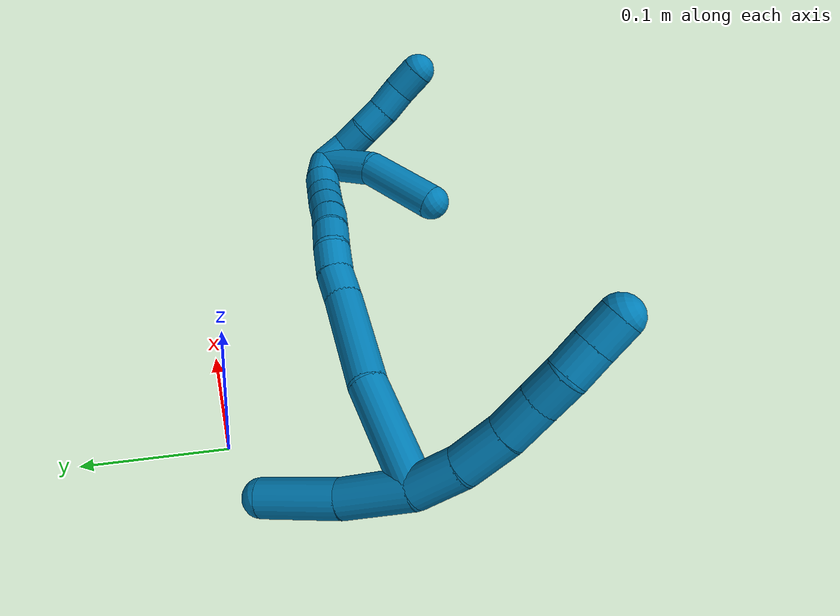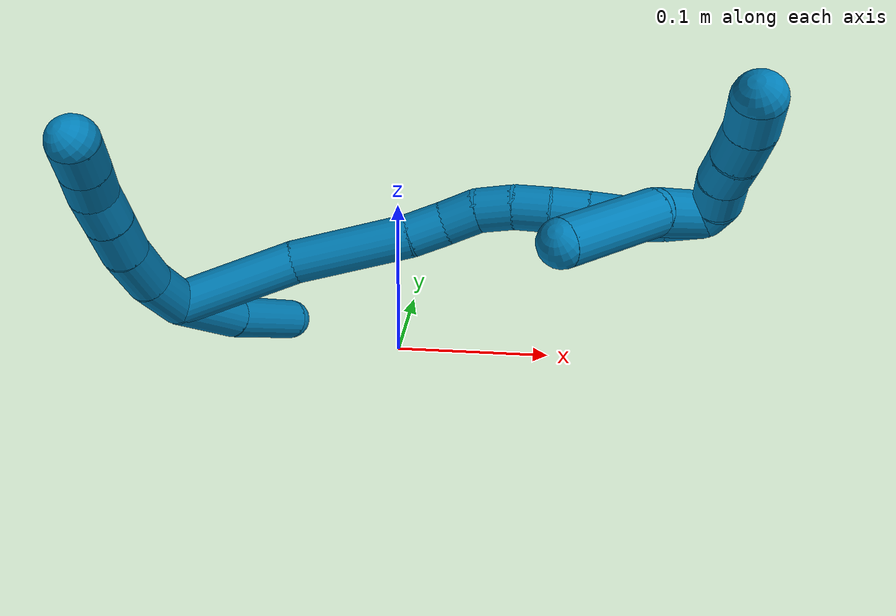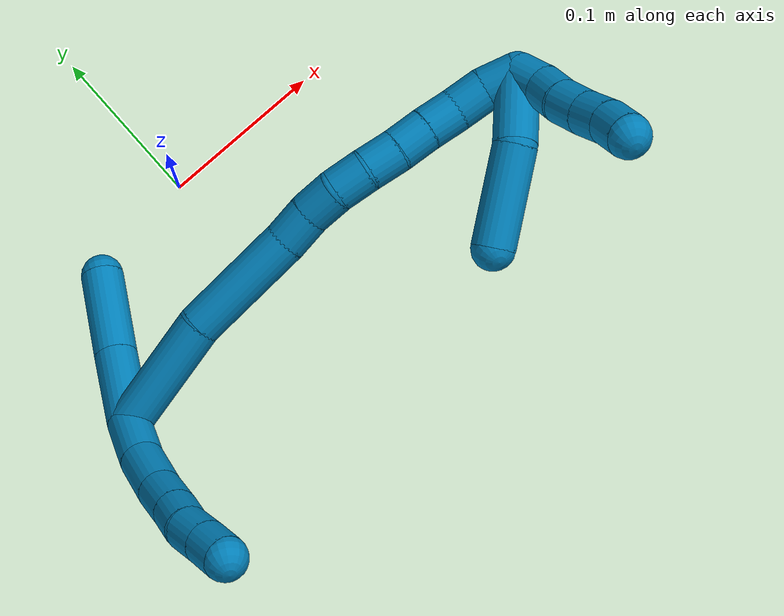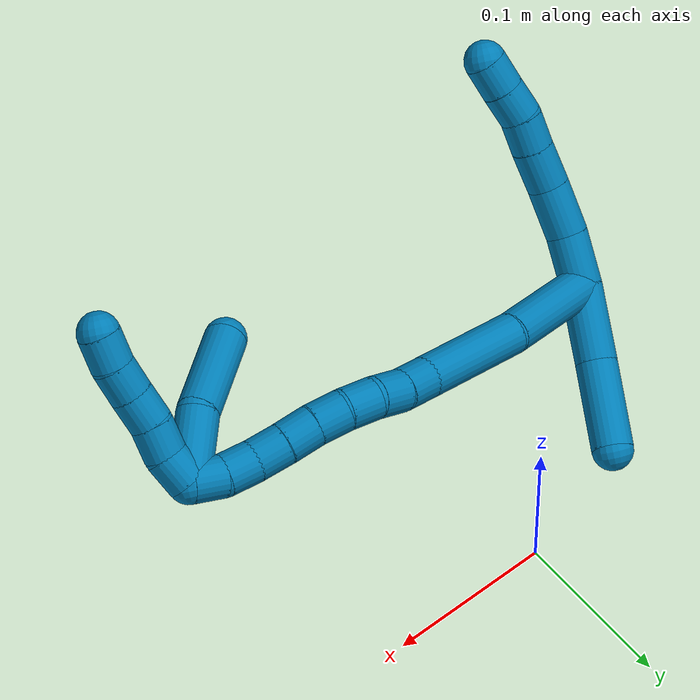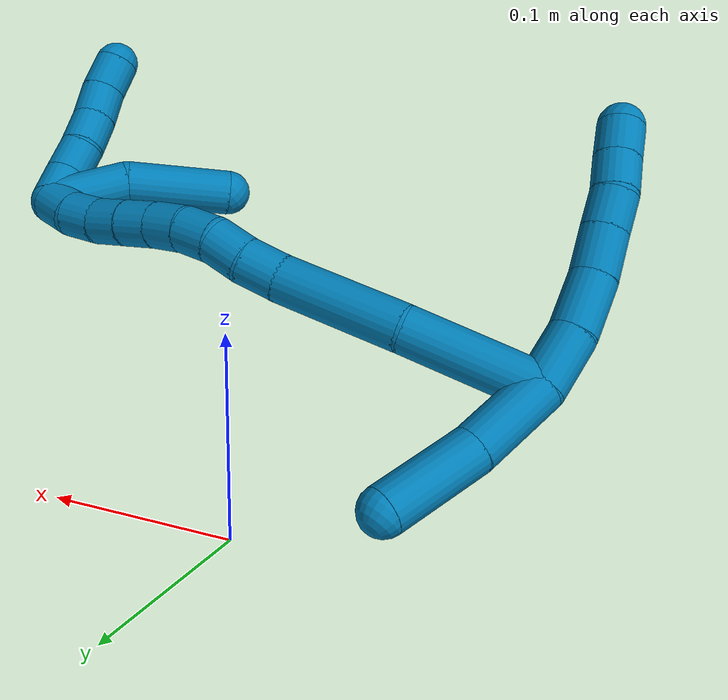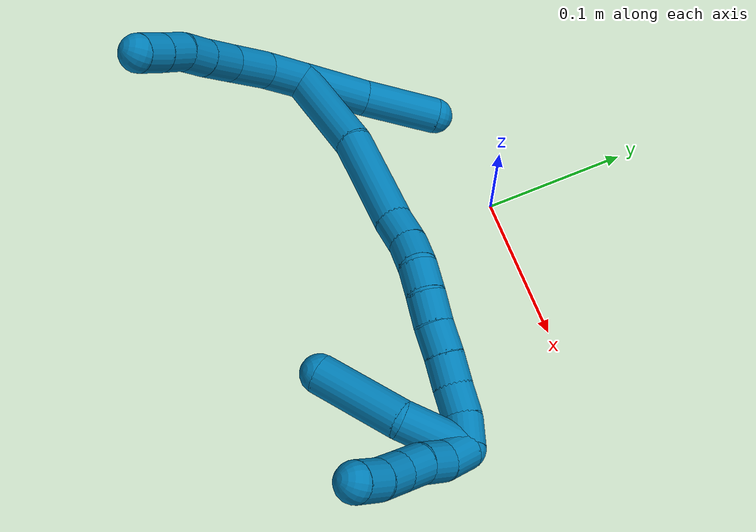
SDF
<sdf version="1.7">
 <world name="default">
  <model name="9">
   <static>0</static>
   <link name="9">
    <collision name="collision-cylinder-e_1_2_8">
     <pose>0.001178 -0.000164 0.01609 0.010195 0.073086 0.000373</pose>
     <geometry><cylinder><radius>0.0125</radius><length>0.032268</length></cylinder></geometry>
     <surface>
      <friction><ode><mu>1.16</mu><mu2>1.16</mu2><slip1>0</slip1><slip2>0</slip2></ode></friction>
      <contact><ode><kp>1e+06</kp><kd>1</kd><max_vel>0</max_vel><min_depth>0.001</min_depth></ode></contact>
     </surface>
    </collision>
    <visual name="visual-cylinder-e_1_2_8">
     <pose>0.001178 -0.000164 0.01609 0.010195 0.073086 0.000373</pose>
     <geometry><cylinder><radius>0.0125</radius><length>0.032268</length></cylinder></geometry>
     <material><ambient>0 0.490196 0.709804 1</ambient></material>
    </visual>
    <collision name="collision-cylinder-e_2_8_9">
     <pose>0.006008 0.000476 0.047436 -0.052688 0.234652 -0.006212</pose>
     <geometry><cylinder><radius>0.0125</radius><length>0.031414</length></cylinder></geometry>
     <surface>
      <friction><ode><mu>1.16</mu><mu2>1.16</mu2><slip1>0</slip1><slip2>0</slip2></ode></friction>
      <contact><ode><kp>1e+06</kp><kd>1</kd><max_vel>0</max_vel><min_depth>0.001</min_depth></ode></contact>
     </surface>
    </collision>
    <visual name="visual-cylinder-e_2_8_9">
     <pose>0.006008 0.000476 0.047436 -0.052688 0.234652 -0.006212</pose>
     <geometry><cylinder><radius>0.0125</radius><length>0.031414</length></cylinder></geometry>
     <material><ambient>0 0.490196 0.709804 1</ambient></material>
    </visual>
    <collision name="collision-cylinder-e_3_9_10">
     <pose>0.013733 0.003057 0.074621 -0.147798 0.325651 -0.024323</pose>
     <geometry><cylinder><radius>0.0125</radius><length>0.025462</length></cylinder></geometry>
     <surface>
      <friction><ode><mu>1.16</mu><mu2>1.16</mu2><slip1>0</slip1><slip2>0</slip2></ode></friction>
      <contact><ode><kp>1e+06</kp><kd>1</kd><max_vel>0</max_vel><min_depth>0.001</min_depth></ode></contact>
     </surface>
    </collision>
    <visual name="visual-cylinder-e_3_9_10">
     <pose>0.013733 0.003057 0.074621 -0.147798 0.325651 -0.024323</pose>
     <geometry><cylinder><radius>0.0125</radius><length>0.025462</length></cylinder></geometry>
     <material><ambient>0 0.490196 0.709804 1</ambient></material>
    </visual>
    <collision name="collision-cylinder-e_4_10_11">
     <pose>0.020846 0.006613 0.096325 -0.180121 0.297003 -0.027018</pose>
     <geometry><cylinder><radius>0.0125</radius><length>0.020778</length></cylinder></geometry>
     <surface>
      <friction><ode><mu>1.16</mu><mu2>1.16</mu2><slip1>0</slip1><slip2>0</slip2></ode></friction>
      <contact><ode><kp>1e+06</kp><kd>1</kd><max_vel>0</max_vel><min_depth>0.001</min_depth></ode></contact>
     </surface>
    </collision>
    <visual name="visual-cylinder-e_4_10_11">
     <pose>0.020846 0.006613 0.096325 -0.180121 0.297003 -0.027018</pose>
     <geometry><cylinder><radius>0.0125</radius><length>0.020778</length></cylinder></geometry>
     <material><ambient>0 0.490196 0.709804 1</ambient></material>
    </visual>
    <collision name="collision-cylinder-e_5_11_12">
     <pose>0.028464 0.008786 0.115008 -0.044078 0.474187 -0.010652</pose>
     <geometry><cylinder><radius>0.0125</radius><length>0.020049</length></cylinder></geometry>
     <surface>
      <friction><ode><mu>1.16</mu><mu2>1.16</mu2><slip1>0</slip1><slip2>0</slip2></ode></friction>
      <contact><ode><kp>1e+06</kp><kd>1</kd><max_vel>0</max_vel><min_depth>0.001</min_depth></ode></contact>
     </surface>
    </collision>
    <visual name="visual-cylinder-e_5_11_12">
     <pose>0.028464 0.008786 0.115008 -0.044078 0.474187 -0.010652</pose>
     <geometry><cylinder><radius>0.0125</radius><length>0.020049</length></cylinder></geometry>
     <material><ambient>0 0.490196 0.709804 1</ambient></material>
    </visual>
    <collision name="collision-cylinder-e_6_12_6">
     <pose>0.037374 0.009625 0.132936 -0.049403 0.447357 -0.01124</pose>
     <geometry><cylinder><radius>0.0125</radius><length>0.02003</length></cylinder></geometry>
     <surface>
      <friction><ode><mu>1.16</mu><mu2>1.16</mu2><slip1>0</slip1><slip2>0</slip2></ode></friction>
      <contact><ode><kp>1e+06</kp><kd>1</kd><max_vel>0</max_vel><min_depth>0.001</min_depth></ode></contact>
     </surface>
    </collision>
    <visual name="visual-cylinder-e_6_12_6">
     <pose>0.037374 0.009625 0.132936 -0.049403 0.447357 -0.01124</pose>
     <geometry><cylinder><radius>0.0125</radius><length>0.02003</length></cylinder></geometry>
     <material><ambient>0 0.490196 0.709804 1</ambient></material>
    </visual>
    <collision name="collision-cylinder-e_1_2_13">
     <pose>0.003296 0.004102 -0.022745 -2.96315 0.141654 -1.34098</pose>
     <geometry><cylinder><radius>0.0125</radius><length>0.046692</length></cylinder></geometry>
     <surface>
      <friction><ode><mu>1.16</mu><mu2>1.16</mu2><slip1>0</slip1><slip2>0</slip2></ode></friction>
      <contact><ode><kp>1e+06</kp><kd>1</kd><max_vel>0</max_vel><min_depth>0.001</min_depth></ode></contact>
     </surface>
    </collision>
    <visual name="visual-cylinder-e_1_2_13">
     <pose>0.003296 0.004102 -0.022745 -2.96315 0.141654 -1.34098</pose>
     <geometry><cylinder><radius>0.0125</radius><length>0.046692</length></cylinder></geometry>
     <material><ambient>0 0.490196 0.709804 1</ambient></material>
    </visual>
    <collision name="collision-cylinder-e_2_13_5">
     <pose>0.012729 0.015778 -0.070298 -2.84531 0.232344 -1.32729</pose>
     <geometry><cylinder><radius>0.0125</radius><length>0.053308</length></cylinder></geometry>
     <surface>
      <friction><ode><mu>1.16</mu><mu2>1.16</mu2><slip1>0</slip1><slip2>0</slip2></ode></friction>
      <contact><ode><kp>1e+06</kp><kd>1</kd><max_vel>0</max_vel><min_depth>0.001</min_depth></ode></contact>
     </surface>
    </collision>
    <visual name="visual-cylinder-e_2_13_5">
     <pose>0.012729 0.015778 -0.070298 -2.84531 0.232344 -1.32729</pose>
     <geometry><cylinder><radius>0.0125</radius><length>0.053308</length></cylinder></geometry>
     <material><ambient>0 0.490196 0.709804 1</ambient></material>
    </visual>
    <collision name="collision-cylinder-e_1_2_14">
     <pose>0.033683 0.007941 -0.007017 -2.29447 1.26598 -2.03959</pose>
     <geometry><cylinder><radius>0.0125</radius><length>0.070622</length></cylinder></geometry>
     <surface>
      <friction><ode><mu>1.16</mu><mu2>1.16</mu2><slip1>0</slip1><slip2>0</slip2></ode></friction>
      <contact><ode><kp>1e+06</kp><kd>1</kd><max_vel>0</max_vel><min_depth>0.001</min_depth></ode></contact>
     </surface>
    </collision>
    <visual name="visual-cylinder-e_1_2_14">
     <pose>0.033683 0.007941 -0.007017 -2.29447 1.26598 -2.03959</pose>
     <geometry><cylinder><radius>0.0125</radius><length>0.070622</length></cylinder></geometry>
     <material><ambient>0 0.490196 0.709804 1</ambient></material>
    </visual>
    <collision name="collision-cylinder-e_2_14_15">
     <pose>0.100993 0.017792 -0.019333 -2.79575 1.40482 -2.73458</pose>
     <geometry><cylinder><radius>0.0125</radius><length>0.068191</length></cylinder></geometry>
     <surface>
      <friction><ode><mu>1.16</mu><mu2>1.16</mu2><slip1>0</slip1><slip2>0</slip2></ode></friction>
      <contact><ode><kp>1e+06</kp><kd>1</kd><max_vel>0</max_vel><min_depth>0.001</min_depth></ode></contact>
     </surface>
    </collision>
    <visual name="visual-cylinder-e_2_14_15">
     <pose>0.100993 0.017792 -0.019333 -2.79575 1.40482 -2.73458</pose>
     <geometry><cylinder><radius>0.0125</radius><length>0.068191</length></cylinder></geometry>
     <material><ambient>0 0.490196 0.709804 1</ambient></material>
    </visual>
    <collision name="collision-cylinder-e_3_15_16">
     <pose>0.144889 0.021536 -0.025938 -2.18925 1.35506 -2.00151</pose>
     <geometry><cylinder><radius>0.0125</radius><length>0.021025</length></cylinder></geometry>
     <surface>
      <friction><ode><mu>1.16</mu><mu2>1.16</mu2><slip1>0</slip1><slip2>0</slip2></ode></friction>
      <contact><ode><kp>1e+06</kp><kd>1</kd><max_vel>0</max_vel><min_depth>0.001</min_depth></ode></contact>
     </surface>
    </collision>
    <visual name="visual-cylinder-e_3_15_16">
     <pose>0.144889 0.021536 -0.025938 -2.18925 1.35506 -2.00151</pose>
     <geometry><cylinder><radius>0.0125</radius><length>0.021025</length></cylinder></geometry>
     <material><ambient>0 0.490196 0.709804 1</ambient></material>
    </visual>
    <collision name="collision-cylinder-e_4_16_17">
     <pose>0.165135 0.02452 -0.027042 -1.39815 1.45427 -1.28449</pose>
     <geometry><cylinder><radius>0.0125</radius><length>0.02009</length></cylinder></geometry>
     <surface>
      <friction><ode><mu>1.16</mu><mu2>1.16</mu2><slip1>0</slip1><slip2>0</slip2></ode></friction>
      <contact><ode><kp>1e+06</kp><kd>1</kd><max_vel>0</max_vel><min_depth>0.001</min_depth></ode></contact>
     </surface>
    </collision>
    <visual name="visual-cylinder-e_4_16_17">
     <pose>0.165135 0.02452 -0.027042 -1.39815 1.45427 -1.28449</pose>
     <geometry><cylinder><radius>0.0125</radius><length>0.02009</length></cylinder></geometry>
     <material><ambient>0 0.490196 0.709804 1</ambient></material>
    </visual>
    <collision name="collision-cylinder-e_5_17_18">
     <pose>0.184986 0.024425 -0.027914 2.28168 1.40582 2.14943</pose>
     <geometry><cylinder><radius>0.0125</radius><length>0.02002</length></cylinder></geometry>
     <surface>
      <friction><ode><mu>1.16</mu><mu2>1.16</mu2><slip1>0</slip1><slip2>0</slip2></ode></friction>
      <contact><ode><kp>1e+06</kp><kd>1</kd><max_vel>0</max_vel><min_depth>0.001</min_depth></ode></contact>
     </surface>
    </collision>
    <visual name="visual-cylinder-e_5_17_18">
     <pose>0.184986 0.024425 -0.027914 2.28168 1.40582 2.14943</pose>
     <geometry><cylinder><radius>0.0125</radius><length>0.02002</length></cylinder></geometry>
     <material><ambient>0 0.490196 0.709804 1</ambient></material>
    </visual>
    <collision name="collision-cylinder-e_6_18_19">
     <pose>0.204301 0.020637 -0.031113 2.2675 1.23319 1.97606</pose>
     <geometry><cylinder><radius>0.0125</radius><length>0.020012</length></cylinder></geometry>
     <surface>
      <friction><ode><mu>1.16</mu><mu2>1.16</mu2><slip1>0</slip1><slip2>0</slip2></ode></friction>
      <contact><ode><kp>1e+06</kp><kd>1</kd><max_vel>0</max_vel><min_depth>0.001</min_depth></ode></contact>
     </surface>
    </collision>
    <visual name="visual-cylinder-e_6_18_19">
     <pose>0.204301 0.020637 -0.031113 2.2675 1.23319 1.97606</pose>
     <geometry><cylinder><radius>0.0125</radius><length>0.020012</length></cylinder></geometry>
     <material><ambient>0 0.490196 0.709804 1</ambient></material>
    </visual>
    <collision name="collision-cylinder-e_7_19_20">
     <pose>0.222987 0.015716 -0.036225 2.46868 1.17929 2.1782</pose>
     <geometry><cylinder><radius>0.0125</radius><length>0.020004</length></cylinder></geometry>
     <surface>
      <friction><ode><mu>1.16</mu><mu2>1.16</mu2><slip1>0</slip1><slip2>0</slip2></ode></friction>
      <contact><ode><kp>1e+06</kp><kd>1</kd><max_vel>0</max_vel><min_depth>0.001</min_depth></ode></contact>
     </surface>
    </collision>
    <visual name="visual-cylinder-e_7_19_20">
     <pose>0.222987 0.015716 -0.036225 2.46868 1.17929 2.1782</pose>
     <geometry><cylinder><radius>0.0125</radius><length>0.020004</length></cylinder></geometry>
     <material><ambient>0 0.490196 0.709804 1</ambient></material>
    </visual>
    <collision name="collision-cylinder-e_8_20_21">
     <pose>0.241452 0.010517 -0.041909 2.33432 1.17025 1.99639</pose>
     <geometry><cylinder><radius>0.0125</radius><length>0.020025</length></cylinder></geometry>
     <surface>
      <friction><ode><mu>1.16</mu><mu2>1.16</mu2><slip1>0</slip1><slip2>0</slip2></ode></friction>
      <contact><ode><kp>1e+06</kp><kd>1</kd><max_vel>0</max_vel><min_depth>0.001</min_depth></ode></contact>
     </surface>
    </collision>
    <visual name="visual-cylinder-e_8_20_21">
     <pose>0.241452 0.010517 -0.041909 2.33432 1.17025 1.99639</pose>
     <geometry><cylinder><radius>0.0125</radius><length>0.020025</length></cylinder></geometry>
     <material><ambient>0 0.490196 0.709804 1</ambient></material>
    </visual>
    <collision name="collision-cylinder-e_9_21_22">
     <pose>0.26038 0.006083 -0.046394 2.40681 1.32778 2.22725</pose>
     <geometry><cylinder><radius>0.0125</radius><length>0.020002</length></cylinder></geometry>
     <surface>
      <friction><ode><mu>1.16</mu><mu2>1.16</mu2><slip1>0</slip1><slip2>0</slip2></ode></friction>
      <contact><ode><kp>1e+06</kp><kd>1</kd><max_vel>0</max_vel><min_depth>0.001</min_depth></ode></contact>
     </surface>
    </collision>
    <visual name="visual-cylinder-e_9_21_22">
     <pose>0.26038 0.006083 -0.046394 2.40681 1.32778 2.22725</pose>
     <geometry><cylinder><radius>0.0125</radius><length>0.020002</length></cylinder></geometry>
     <material><ambient>0 0.490196 0.709804 1</ambient></material>
    </visual>
    <collision name="collision-cylinder-e_10_22_1">
     <pose>0.279867 0.002468 -0.047515 1.2504 1.35837 1.05522</pose>
     <geometry><cylinder><radius>0.0125</radius><length>0.020009</length></cylinder></geometry>
     <surface>
      <friction><ode><mu>1.16</mu><mu2>1.16</mu2><slip1>0</slip1><slip2>0</slip2></ode></friction>
      <contact><ode><kp>1e+06</kp><kd>1</kd><max_vel>0</max_vel><min_depth>0.001</min_depth></ode></contact>
     </surface>
    </collision>
    <visual name="visual-cylinder-e_10_22_1">
     <pose>0.279867 0.002468 -0.047515 1.2504 1.35837 1.05522</pose>
     <geometry><cylinder><radius>0.0125</radius><length>0.020009</length></cylinder></geometry>
     <material><ambient>0 0.490196 0.709804 1</ambient></material>
    </visual>
    <collision name="collision-cylinder-e_1_1_23">
     <pose>0.293901 -0.001528 -0.038024 0.222209 0.439454 0.049821</pose>
     <geometry><cylinder><radius>0.0125</radius><length>0.02</length></cylinder></geometry>
     <surface>
      <friction><ode><mu>1.16</mu><mu2>1.16</mu2><slip1>0</slip1><slip2>0</slip2></ode></friction>
      <contact><ode><kp>1e+06</kp><kd>1</kd><max_vel>0</max_vel><min_depth>0.001</min_depth></ode></contact>
     </surface>
    </collision>
    <visual name="visual-cylinder-e_1_1_23">
     <pose>0.293901 -0.001528 -0.038024 0.222209 0.439454 0.049821</pose>
     <geometry><cylinder><radius>0.0125</radius><length>0.02</length></cylinder></geometry>
     <material><ambient>0 0.490196 0.709804 1</ambient></material>
    </visual>
    <collision name="collision-cylinder-e_2_23_24">
     <pose>0.300679 -0.003142 -0.019528 -0.039362 0.255179 -0.00505</pose>
     <geometry><cylinder><radius>0.0125</radius><length>0.02</length></cylinder></geometry>
     <surface>
      <friction><ode><mu>1.16</mu><mu2>1.16</mu2><slip1>0</slip1><slip2>0</slip2></ode></friction>
      <contact><ode><kp>1e+06</kp><kd>1</kd><max_vel>0</max_vel><min_depth>0.001</min_depth></ode></contact>
     </surface>
    </collision>
    <visual name="visual-cylinder-e_2_23_24">
     <pose>0.300679 -0.003142 -0.019528 -0.039362 0.255179 -0.00505</pose>
     <geometry><cylinder><radius>0.0125</radius><length>0.02</length></cylinder></geometry>
     <material><ambient>0 0.490196 0.709804 1</ambient></material>
    </visual>
    <collision name="collision-cylinder-e_3_24_25">
     <pose>0.307155 -0.00324 -0.000685 0.052114 0.406241 0.010736</pose>
     <geometry><cylinder><radius>0.0125</radius><length>0.02</length></cylinder></geometry>
     <surface>
      <friction><ode><mu>1.16</mu><mu2>1.16</mu2><slip1>0</slip1><slip2>0</slip2></ode></friction>
      <contact><ode><kp>1e+06</kp><kd>1</kd><max_vel>0</max_vel><min_depth>0.001</min_depth></ode></contact>
     </surface>
    </collision>
    <visual name="visual-cylinder-e_3_24_25">
     <pose>0.307155 -0.00324 -0.000685 0.052114 0.406241 0.010736</pose>
     <geometry><cylinder><radius>0.0125</radius><length>0.02</length></cylinder></geometry>
     <material><ambient>0 0.490196 0.709804 1</ambient></material>
    </visual>
    <collision name="collision-cylinder-e_4_25_26">
     <pose>0.315287 -0.003077 0.01755 -0.070617 0.431323 -0.015476</pose>
     <geometry><cylinder><radius>0.0125</radius><length>0.02</length></cylinder></geometry>
     <surface>
      <friction><ode><mu>1.16</mu><mu2>1.16</mu2><slip1>0</slip1><slip2>0</slip2></ode></friction>
      <contact><ode><kp>1e+06</kp><kd>1</kd><max_vel>0</max_vel><min_depth>0.001</min_depth></ode></contact>
     </surface>
    </collision>
    <visual name="visual-cylinder-e_4_25_26">
     <pose>0.315287 -0.003077 0.01755 -0.070617 0.431323 -0.015476</pose>
     <geometry><cylinder><radius>0.0125</radius><length>0.02</length></cylinder></geometry>
     <material><ambient>0 0.490196 0.709804 1</ambient></material>
    </visual>
    <collision name="collision-cylinder-e_5_26_4">
     <pose>0.322109 -0.001477 0.036208 -0.099611 0.267268 -0.013402</pose>
     <geometry><cylinder><radius>0.0125</radius><length>0.02</length></cylinder></geometry>
     <surface>
      <friction><ode><mu>1.16</mu><mu2>1.16</mu2><slip1>0</slip1><slip2>0</slip2></ode></friction>
      <contact><ode><kp>1e+06</kp><kd>1</kd><max_vel>0</max_vel><min_depth>0.001</min_depth></ode></contact>
     </surface>
    </collision>
    <visual name="visual-cylinder-e_5_26_4">
     <pose>0.322109 -0.001477 0.036208 -0.099611 0.267268 -0.013402</pose>
     <geometry><cylinder><radius>0.0125</radius><length>0.02</length></cylinder></geometry>
     <material><ambient>0 0.490196 0.709804 1</ambient></material>
    </visual>
    <collision name="collision-cylinder-e_1_1_27">
     <pose>0.27885 -0.005011 -0.029456 0.305014 -0.534511 -0.084118</pose>
     <geometry><cylinder><radius>0.0125</radius><length>0.042387</length></cylinder></geometry>
     <surface>
      <friction><ode><mu>1.16</mu><mu2>1.16</mu2><slip1>0</slip1><slip2>0</slip2></ode></friction>
      <contact><ode><kp>1e+06</kp><kd>1</kd><max_vel>0</max_vel><min_depth>0.001</min_depth></ode></contact>
     </surface>
    </collision>
    <visual name="visual-cylinder-e_1_1_27">
     <pose>0.27885 -0.005011 -0.029456 0.305014 -0.534511 -0.084118</pose>
     <geometry><cylinder><radius>0.0125</radius><length>0.042387</length></cylinder></geometry>
     <material><ambient>0 0.490196 0.709804 1</ambient></material>
    </visual>
    <collision name="collision-cylinder-e_2_27_3">
     <pose>0.247446 -0.02168 0.004669 0.589666 -0.797184 -0.254402</pose>
     <geometry><cylinder><radius>0.0125</radius><length>0.057613</length></cylinder></geometry>
     <surface>
      <friction><ode><mu>1.16</mu><mu2>1.16</mu2><slip1>0</slip1><slip2>0</slip2></ode></friction>
      <contact><ode><kp>1e+06</kp><kd>1</kd><max_vel>0</max_vel><min_depth>0.001</min_depth></ode></contact>
     </surface>
    </collision>
    <visual name="visual-cylinder-e_2_27_3">
     <pose>0.247446 -0.02168 0.004669 0.589666 -0.797184 -0.254402</pose>
     <geometry><cylinder><radius>0.0125</radius><length>0.057613</length></cylinder></geometry>
     <material><ambient>0 0.490196 0.709804 1</ambient></material>
    </visual>
    <collision name="collision-sphere-3">
     <pose>0.226837 -0.032873 0.021397 0 -0 0</pose>
     <geometry><sphere><radius>0.0125</radius></sphere></geometry>
     <surface>
      <friction><ode><mu>1.16</mu><mu2>1.16</mu2><slip1>0</slip1><slip2>0</slip2></ode></friction>
      <contact><ode><kp>1e+06</kp><kd>1</kd><max_vel>0</max_vel><min_depth>0.001</min_depth></ode></contact>
     </surface>
    </collision>
    <visual name="visual-sphere-3">
     <pose>0.226837 -0.032873 0.021397 0 -0 0</pose>
     <geometry><sphere><radius>0.0125</radius></sphere></geometry>
     <material><ambient>0 0.490196 0.709804 1</ambient></material>
    </visual>
    <collision name="collision-sphere-27">
     <pose>0.268054 -0.010487 -0.01206 0 -0 0</pose>
     <geometry><sphere><radius>0.0125</radius></sphere></geometry>
     <surface>
      <friction><ode><mu>1.16</mu><mu2>1.16</mu2><slip1>0</slip1><slip2>0</slip2></ode></friction>
      <contact><ode><kp>1e+06</kp><kd>1</kd><max_vel>0</max_vel><min_depth>0.001</min_depth></ode></contact>
     </surface>
    </collision>
    <visual name="visual-sphere-27">
     <pose>0.268054 -0.010487 -0.01206 0 -0 0</pose>
     <geometry><sphere><radius>0.0125</radius></sphere></geometry>
     <material><ambient>0 0.490196 0.709804 1</ambient></material>
    </visual>
    <collision name="collision-sphere-4">
     <pose>0.32475 -0.000518 0.045806 0 -0 0</pose>
     <geometry><sphere><radius>0.0125</radius></sphere></geometry>
     <surface>
      <friction><ode><mu>1.16</mu><mu2>1.16</mu2><slip1>0</slip1><slip2>0</slip2></ode></friction>
      <contact><ode><kp>1e+06</kp><kd>1</kd><max_vel>0</max_vel><min_depth>0.001</min_depth></ode></contact>
     </surface>
    </collision>
    <visual name="visual-sphere-4">
     <pose>0.32475 -0.000518 0.045806 0 -0 0</pose>
     <geometry><sphere><radius>0.0125</radius></sphere></geometry>
     <material><ambient>0 0.490196 0.709804 1</ambient></material>
    </visual>
    <collision name="collision-sphere-26">
     <pose>0.319468 -0.002436 0.026611 0 -0 0</pose>
     <geometry><sphere><radius>0.0125</radius></sphere></geometry>
     <surface>
      <friction><ode><mu>1.16</mu><mu2>1.16</mu2><slip1>0</slip1><slip2>0</slip2></ode></friction>
      <contact><ode><kp>1e+06</kp><kd>1</kd><max_vel>0</max_vel><min_depth>0.001</min_depth></ode></contact>
     </surface>
    </collision>
    <visual name="visual-sphere-26">
     <pose>0.319468 -0.002436 0.026611 0 -0 0</pose>
     <geometry><sphere><radius>0.0125</radius></sphere></geometry>
     <material><ambient>0 0.490196 0.709804 1</ambient></material>
    </visual>
    <collision name="collision-sphere-25">
     <pose>0.311107 -0.003718 0.008488 0 -0 0</pose>
     <geometry><sphere><radius>0.0125</radius></sphere></geometry>
     <surface>
      <friction><ode><mu>1.16</mu><mu2>1.16</mu2><slip1>0</slip1><slip2>0</slip2></ode></friction>
      <contact><ode><kp>1e+06</kp><kd>1</kd><max_vel>0</max_vel><min_depth>0.001</min_depth></ode></contact>
     </surface>
    </collision>
    <visual name="visual-sphere-25">
     <pose>0.311107 -0.003718 0.008488 0 -0 0</pose>
     <geometry><sphere><radius>0.0125</radius></sphere></geometry>
     <material><ambient>0 0.490196 0.709804 1</ambient></material>
    </visual>
    <collision name="collision-sphere-24">
     <pose>0.303204 -0.002761 -0.009859 0 -0 0</pose>
     <geometry><sphere><radius>0.0125</radius></sphere></geometry>
     <surface>
      <friction><ode><mu>1.16</mu><mu2>1.16</mu2><slip1>0</slip1><slip2>0</slip2></ode></friction>
      <contact><ode><kp>1e+06</kp><kd>1</kd><max_vel>0</max_vel><min_depth>0.001</min_depth></ode></contact>
     </surface>
    </collision>
    <visual name="visual-sphere-24">
     <pose>0.303204 -0.002761 -0.009859 0 -0 0</pose>
     <geometry><sphere><radius>0.0125</radius></sphere></geometry>
     <material><ambient>0 0.490196 0.709804 1</ambient></material>
    </visual>
    <collision name="collision-sphere-23">
     <pose>0.298155 -0.003523 -0.029196 0 -0 0</pose>
     <geometry><sphere><radius>0.0125</radius></sphere></geometry>
     <surface>
      <friction><ode><mu>1.16</mu><mu2>1.16</mu2><slip1>0</slip1><slip2>0</slip2></ode></friction>
      <contact><ode><kp>1e+06</kp><kd>1</kd><max_vel>0</max_vel><min_depth>0.001</min_depth></ode></contact>
     </surface>
    </collision>
    <visual name="visual-sphere-23">
     <pose>0.298155 -0.003523 -0.029196 0 -0 0</pose>
     <geometry><sphere><radius>0.0125</radius></sphere></geometry>
     <material><ambient>0 0.490196 0.709804 1</ambient></material>
    </visual>
    <collision name="collision-sphere-1">
     <pose>0.289646 0.000466 -0.046851 0 -0 0</pose>
     <geometry><sphere><radius>0.0125</radius></sphere></geometry>
     <surface>
      <friction><ode><mu>1.16</mu><mu2>1.16</mu2><slip1>0</slip1><slip2>0</slip2></ode></friction>
      <contact><ode><kp>1e+06</kp><kd>1</kd><max_vel>0</max_vel><min_depth>0.001</min_depth></ode></contact>
     </surface>
    </collision>
    <visual name="visual-sphere-1">
     <pose>0.289646 0.000466 -0.046851 0 -0 0</pose>
     <geometry><sphere><radius>0.0125</radius></sphere></geometry>
     <material><ambient>0 0.490196 0.709804 1</ambient></material>
    </visual>
    <collision name="collision-sphere-22">
     <pose>0.270087 0.00447 -0.04818 0 -0 0</pose>
     <geometry><sphere><radius>0.0125</radius></sphere></geometry>
     <surface>
      <friction><ode><mu>1.16</mu><mu2>1.16</mu2><slip1>0</slip1><slip2>0</slip2></ode></friction>
      <contact><ode><kp>1e+06</kp><kd>1</kd><max_vel>0</max_vel><min_depth>0.001</min_depth></ode></contact>
     </surface>
    </collision>
    <visual name="visual-sphere-22">
     <pose>0.270087 0.00447 -0.04818 0 -0 0</pose>
     <geometry><sphere><radius>0.0125</radius></sphere></geometry>
     <material><ambient>0 0.490196 0.709804 1</ambient></material>
    </visual>
    <collision name="collision-sphere-21">
     <pose>0.250672 0.007697 -0.044608 0 -0 0</pose>
     <geometry><sphere><radius>0.0125</radius></sphere></geometry>
     <surface>
      <friction><ode><mu>1.16</mu><mu2>1.16</mu2><slip1>0</slip1><slip2>0</slip2></ode></friction>
      <contact><ode><kp>1e+06</kp><kd>1</kd><max_vel>0</max_vel><min_depth>0.001</min_depth></ode></contact>
     </surface>
    </collision>
    <visual name="visual-sphere-21">
     <pose>0.250672 0.007697 -0.044608 0 -0 0</pose>
     <geometry><sphere><radius>0.0125</radius></sphere></geometry>
     <material><ambient>0 0.490196 0.709804 1</ambient></material>
    </visual>
    <collision name="collision-sphere-12">
     <pose>0.033041 0.009179 0.123918 0 -0 0</pose>
     <geometry><sphere><radius>0.0125</radius></sphere></geometry>
     <surface>
      <friction><ode><mu>1.16</mu><mu2>1.16</mu2><slip1>0</slip1><slip2>0</slip2></ode></friction>
      <contact><ode><kp>1e+06</kp><kd>1</kd><max_vel>0</max_vel><min_depth>0.001</min_depth></ode></contact>
     </surface>
    </collision>
    <visual name="visual-sphere-12">
     <pose>0.033041 0.009179 0.123918 0 -0 0</pose>
     <geometry><sphere><radius>0.0125</radius></sphere></geometry>
     <material><ambient>0 0.490196 0.709804 1</ambient></material>
    </visual>
    <collision name="collision-sphere-11">
     <pose>0.023887 0.008393 0.106098 0 -0 0</pose>
     <geometry><sphere><radius>0.0125</radius></sphere></geometry>
     <surface>
      <friction><ode><mu>1.16</mu><mu2>1.16</mu2><slip1>0</slip1><slip2>0</slip2></ode></friction>
      <contact><ode><kp>1e+06</kp><kd>1</kd><max_vel>0</max_vel><min_depth>0.001</min_depth></ode></contact>
     </surface>
    </collision>
    <visual name="visual-sphere-11">
     <pose>0.023887 0.008393 0.106098 0 -0 0</pose>
     <geometry><sphere><radius>0.0125</radius></sphere></geometry>
     <material><ambient>0 0.490196 0.709804 1</ambient></material>
    </visual>
    <collision name="collision-sphere-10">
     <pose>0.017806 0.004833 0.086551 0 -0 0</pose>
     <geometry><sphere><radius>0.0125</radius></sphere></geometry>
     <surface>
      <friction><ode><mu>1.16</mu><mu2>1.16</mu2><slip1>0</slip1><slip2>0</slip2></ode></friction>
      <contact><ode><kp>1e+06</kp><kd>1</kd><max_vel>0</max_vel><min_depth>0.001</min_depth></ode></contact>
     </surface>
    </collision>
    <visual name="visual-sphere-10">
     <pose>0.017806 0.004833 0.086551 0 -0 0</pose>
     <geometry><sphere><radius>0.0125</radius></sphere></geometry>
     <material><ambient>0 0.490196 0.709804 1</ambient></material>
    </visual>
    <collision name="collision-sphere-9">
     <pose>0.00966 0.001281 0.062691 0 -0 0</pose>
     <geometry><sphere><radius>0.0125</radius></sphere></geometry>
     <surface>
      <friction><ode><mu>1.16</mu><mu2>1.16</mu2><slip1>0</slip1><slip2>0</slip2></ode></friction>
      <contact><ode><kp>1e+06</kp><kd>1</kd><max_vel>0</max_vel><min_depth>0.001</min_depth></ode></contact>
     </surface>
    </collision>
    <visual name="visual-sphere-9">
     <pose>0.00966 0.001281 0.062691 0 -0 0</pose>
     <geometry><sphere><radius>0.0125</radius></sphere></geometry>
     <material><ambient>0 0.490196 0.709804 1</ambient></material>
    </visual>
    <collision name="collision-sphere-2">
     <geometry><sphere><radius>0.0125</radius></sphere></geometry>
     <surface>
      <friction><ode><mu>1.16</mu><mu2>1.16</mu2><slip1>0</slip1><slip2>0</slip2></ode></friction>
      <contact><ode><kp>1e+06</kp><kd>1</kd><max_vel>0</max_vel><min_depth>0.001</min_depth></ode></contact>
     </surface>
    </collision>
    <visual name="visual-sphere-2">
     <geometry><sphere><radius>0.0125</radius></sphere></geometry>
     <material><ambient>0 0.490196 0.709804 1</ambient></material>
    </visual>
    <collision name="collision-sphere-19">
     <pose>0.213742 0.018095 -0.03324 0 -0 0</pose>
     <geometry><sphere><radius>0.0125</radius></sphere></geometry>
     <surface>
      <friction><ode><mu>1.16</mu><mu2>1.16</mu2><slip1>0</slip1><slip2>0</slip2></ode></friction>
      <contact><ode><kp>1e+06</kp><kd>1</kd><max_vel>0</max_vel><min_depth>0.001</min_depth></ode></contact>
     </surface>
    </collision>
    <visual name="visual-sphere-19">
     <pose>0.213742 0.018095 -0.03324 0 -0 0</pose>
     <geometry><sphere><radius>0.0125</radius></sphere></geometry>
     <material><ambient>0 0.490196 0.709804 1</ambient></material>
    </visual>
    <collision name="collision-sphere-8">
     <pose>0.002356 -0.000328 0.03218 0 -0 0</pose>
     <geometry><sphere><radius>0.0125</radius></sphere></geometry>
     <surface>
      <friction><ode><mu>1.16</mu><mu2>1.16</mu2><slip1>0</slip1><slip2>0</slip2></ode></friction>
      <contact><ode><kp>1e+06</kp><kd>1</kd><max_vel>0</max_vel><min_depth>0.001</min_depth></ode></contact>
     </surface>
    </collision>
    <visual name="visual-sphere-8">
     <pose>0.002356 -0.000328 0.03218 0 -0 0</pose>
     <geometry><sphere><radius>0.0125</radius></sphere></geometry>
     <material><ambient>0 0.490196 0.709804 1</ambient></material>
    </visual>
    <collision name="collision-sphere-6">
     <pose>0.041706 0.01007 0.141954 0 -0 0</pose>
     <geometry><sphere><radius>0.0125</radius></sphere></geometry>
     <surface>
      <friction><ode><mu>1.16</mu><mu2>1.16</mu2><slip1>0</slip1><slip2>0</slip2></ode></friction>
      <contact><ode><kp>1e+06</kp><kd>1</kd><max_vel>0</max_vel><min_depth>0.001</min_depth></ode></contact>
     </surface>
    </collision>
    <visual name="visual-sphere-6">
     <pose>0.041706 0.01007 0.141954 0 -0 0</pose>
     <geometry><sphere><radius>0.0125</radius></sphere></geometry>
     <material><ambient>0 0.490196 0.709804 1</ambient></material>
    </visual>
    <collision name="collision-sphere-13">
     <pose>0.006592 0.008205 -0.04549 0 -0 0</pose>
     <geometry><sphere><radius>0.0125</radius></sphere></geometry>
     <surface>
      <friction><ode><mu>1.16</mu><mu2>1.16</mu2><slip1>0</slip1><slip2>0</slip2></ode></friction>
      <contact><ode><kp>1e+06</kp><kd>1</kd><max_vel>0</max_vel><min_depth>0.001</min_depth></ode></contact>
     </surface>
    </collision>
    <visual name="visual-sphere-13">
     <pose>0.006592 0.008205 -0.04549 0 -0 0</pose>
     <geometry><sphere><radius>0.0125</radius></sphere></geometry>
     <material><ambient>0 0.490196 0.709804 1</ambient></material>
    </visual>
    <collision name="collision-sphere-5">
     <pose>0.018867 0.023351 -0.095106 0 -0 0</pose>
     <geometry><sphere><radius>0.0125</radius></sphere></geometry>
     <surface>
      <friction><ode><mu>1.16</mu><mu2>1.16</mu2><slip1>0</slip1><slip2>0</slip2></ode></friction>
      <contact><ode><kp>1e+06</kp><kd>1</kd><max_vel>0</max_vel><min_depth>0.001</min_depth></ode></contact>
     </surface>
    </collision>
    <visual name="visual-sphere-5">
     <pose>0.018867 0.023351 -0.095106 0 -0 0</pose>
     <geometry><sphere><radius>0.0125</radius></sphere></geometry>
     <material><ambient>0 0.490196 0.709804 1</ambient></material>
    </visual>
    <collision name="collision-sphere-14">
     <pose>0.067366 0.015883 -0.014034 0 -0 0</pose>
     <geometry><sphere><radius>0.0125</radius></sphere></geometry>
     <surface>
      <friction><ode><mu>1.16</mu><mu2>1.16</mu2><slip1>0</slip1><slip2>0</slip2></ode></friction>
      <contact><ode><kp>1e+06</kp><kd>1</kd><max_vel>0</max_vel><min_depth>0.001</min_depth></ode></contact>
     </surface>
    </collision>
    <visual name="visual-sphere-14">
     <pose>0.067366 0.015883 -0.014034 0 -0 0</pose>
     <geometry><sphere><radius>0.0125</radius></sphere></geometry>
     <material><ambient>0 0.490196 0.709804 1</ambient></material>
    </visual>
    <collision name="collision-sphere-15">
     <pose>0.13462 0.019702 -0.024633 0 -0 0</pose>
     <geometry><sphere><radius>0.0125</radius></sphere></geometry>
     <surface>
      <friction><ode><mu>1.16</mu><mu2>1.16</mu2><slip1>0</slip1><slip2>0</slip2></ode></friction>
      <contact><ode><kp>1e+06</kp><kd>1</kd><max_vel>0</max_vel><min_depth>0.001</min_depth></ode></contact>
     </surface>
    </collision>
    <visual name="visual-sphere-15">
     <pose>0.13462 0.019702 -0.024633 0 -0 0</pose>
     <geometry><sphere><radius>0.0125</radius></sphere></geometry>
     <material><ambient>0 0.490196 0.709804 1</ambient></material>
    </visual>
    <collision name="collision-sphere-16">
     <pose>0.155158 0.023369 -0.027243 0 -0 0</pose>
     <geometry><sphere><radius>0.0125</radius></sphere></geometry>
     <surface>
      <friction><ode><mu>1.16</mu><mu2>1.16</mu2><slip1>0</slip1><slip2>0</slip2></ode></friction>
      <contact><ode><kp>1e+06</kp><kd>1</kd><max_vel>0</max_vel><min_depth>0.001</min_depth></ode></contact>
     </surface>
    </collision>
    <visual name="visual-sphere-16">
     <pose>0.155158 0.023369 -0.027243 0 -0 0</pose>
     <geometry><sphere><radius>0.0125</radius></sphere></geometry>
     <material><ambient>0 0.490196 0.709804 1</ambient></material>
    </visual>
    <collision name="collision-sphere-17">
     <pose>0.175112 0.02567 -0.026841 0 -0 0</pose>
     <geometry><sphere><radius>0.0125</radius></sphere></geometry>
     <surface>
      <friction><ode><mu>1.16</mu><mu2>1.16</mu2><slip1>0</slip1><slip2>0</slip2></ode></friction>
      <contact><ode><kp>1e+06</kp><kd>1</kd><max_vel>0</max_vel><min_depth>0.001</min_depth></ode></contact>
     </surface>
    </collision>
    <visual name="visual-sphere-17">
     <pose>0.175112 0.02567 -0.026841 0 -0 0</pose>
     <geometry><sphere><radius>0.0125</radius></sphere></geometry>
     <material><ambient>0 0.490196 0.709804 1</ambient></material>
    </visual>
    <collision name="collision-sphere-18">
     <pose>0.19486 0.023179 -0.028987 0 -0 0</pose>
     <geometry><sphere><radius>0.0125</radius></sphere></geometry>
     <surface>
      <friction><ode><mu>1.16</mu><mu2>1.16</mu2><slip1>0</slip1><slip2>0</slip2></ode></friction>
      <contact><ode><kp>1e+06</kp><kd>1</kd><max_vel>0</max_vel><min_depth>0.001</min_depth></ode></contact>
     </surface>
    </collision>
    <visual name="visual-sphere-18">
     <pose>0.19486 0.023179 -0.028987 0 -0 0</pose>
     <geometry><sphere><radius>0.0125</radius></sphere></geometry>
     <material><ambient>0 0.490196 0.709804 1</ambient></material>
    </visual>
    <collision name="collision-sphere-20">
     <pose>0.232232 0.013338 -0.039209 0 -0 0</pose>
     <geometry><sphere><radius>0.0125</radius></sphere></geometry>
     <surface>
      <friction><ode><mu>1.16</mu><mu2>1.16</mu2><slip1>0</slip1><slip2>0</slip2></ode></friction>
      <contact><ode><kp>1e+06</kp><kd>1</kd><max_vel>0</max_vel><min_depth>0.001</min_depth></ode></contact>
     </surface>
    </collision>
    <visual name="visual-sphere-20">
     <pose>0.232232 0.013338 -0.039209 0 -0 0</pose>
     <geometry><sphere><radius>0.0125</radius></sphere></geometry>
     <material><ambient>0 0.490196 0.709804 1</ambient></material>
    </visual>
    <inertial>
     <pose>0.13806 0.005644 -0.003368 0 -0 0</pose>
     <mass>0.75</mass>
     <inertia><ixx>2.5e-05</ixx><ixy>0</ixy><ixz>0</ixz><iyy>7.5e-05</iyy><iyz>0</iyz><izz>-5.7e-05</izz></inertia>
    </inertial>
   </link>
   <pose>-0.114443 -0.095137 0.062612 0.83282 -0.319933 -0.134742</pose>
  </model>
 </world>
</sdf>
